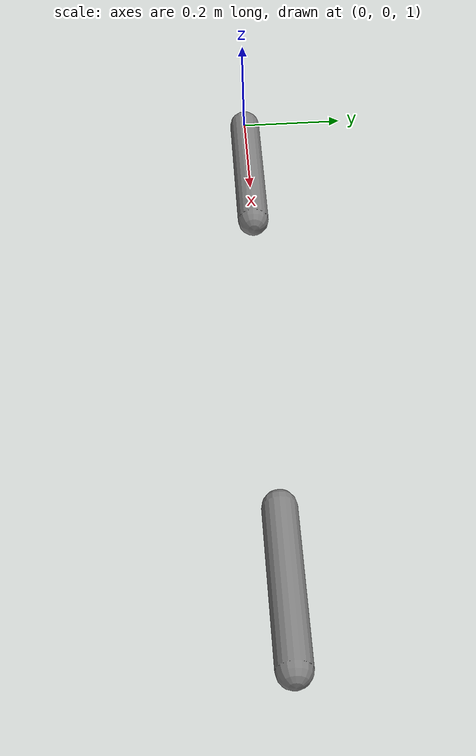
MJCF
<mujoco>
          <option timestep="0.002" gravity="0 0 0"><flag sleep="enable"/></option>
          <worldbody>
            <body name="awake" pos="0 0 1">
              <joint name="j0" type="hinge" axis="0 1 0" damping="0.3"/>
              <geom type="capsule" fromto="0 0 0 0.3 0 0" size="0.03" mass="1"
                    contype="0" conaffinity="0"/>
            </body>
            <body name="asleep" pos="1 0 1" sleep="init">
              <joint name="j1" type="hinge" axis="0 1 0" damping="0.3"/>
              <geom type="capsule" fromto="0 0 0 0.3 0 0" size="0.03" mass="1"
                    contype="0" conaffinity="0"/>
            </body>
          </worldbody>
          <actuator>
            <motor name="m1" joint="j1"/>
          </actuator>
        </mujoco>
